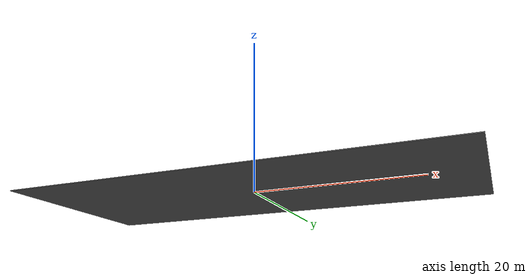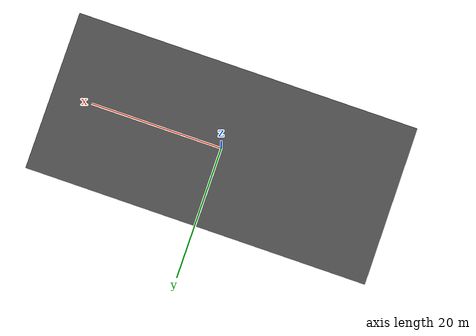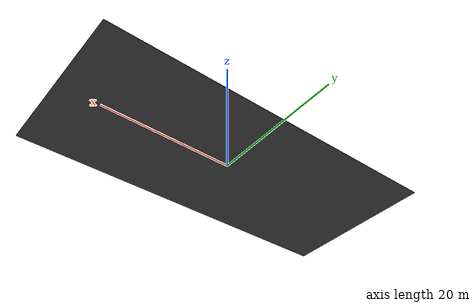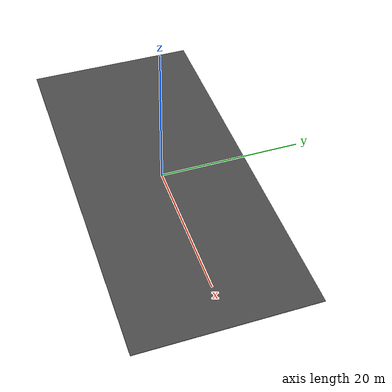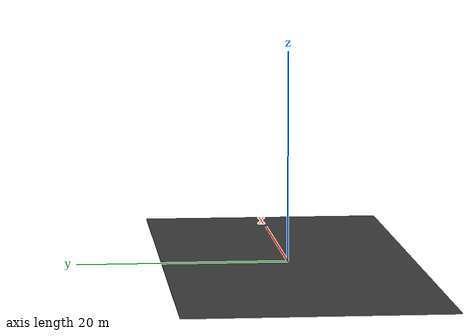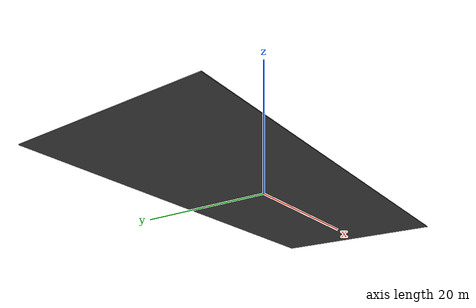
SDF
<?xml version='1.0'?>
<sdf version='1.6'>
  <model name='Grass'>
    <model name='asphalt_plane'>
      <link name='link'>
        <pose frame=''>0 0 0 0 -0 0</pose>
        <self_collide>0</self_collide>
        <kinematic>0</kinematic>
        <visual name='visual'>
          <cast_shadows>0</cast_shadows>
          <geometry>
            <box>
              <size>52.3811 24.0492 0.1</size>
            </box>
          </geometry>
          <material>
            <script>
              <uri>model://asphalt_plane/materials/scripts</uri>
              <uri>model://asphalt_plane/materials/textures</uri>
              <name>vrc/asphalt</name>
            </script>
            <ambient>0.5 0.5 0.5 1</ambient>
            <diffuse>0.5 0.5 0.5 1</diffuse>
            <specular>0.2 0.2 0.2 1</specular>
            <emissive>0 0 0 1</emissive>
          </material>
          <pose frame=''>0 0 0 0 -0 0</pose>
          <transparency>0</transparency>
        </visual>
        <collision name='collision'>
          <laser_retro>0</laser_retro>
          <max_contacts>10</max_contacts>
          <pose frame=''>0 0 0 0 -0 0</pose>
          <geometry>
            <box>
              <size>52.3811 24.0492 0.1</size>
            </box>
          </geometry>
          <surface>
            <friction>
              <ode>
                <mu>1</mu>
                <mu2>1</mu2>
                <fdir1>0 0 0</fdir1>
                <slip1>0</slip1>
                <slip2>0</slip2>
              </ode>
              <torsional>
                <coefficient>1</coefficient>
                <patch_radius>0</patch_radius>
                <surface_radius>0</surface_radius>
                <use_patch_radius>1</use_patch_radius>
                <ode>
                  <slip>0</slip>
                </ode>
              </torsional>
            </friction>
            <bounce>
              <restitution_coefficient>0</restitution_coefficient>
              <threshold>1e+06</threshold>
            </bounce>
            <contact>
              <collide_without_contact>0</collide_without_contact>
              <collide_without_contact_bitmask>1</collide_without_contact_bitmask>
              <collide_bitmask>1</collide_bitmask>
              <ode>
                <soft_cfm>0</soft_cfm>
                <soft_erp>0.2</soft_erp>
                <kp>1e+13</kp>
                <kd>1</kd>
                <max_vel>0.01</max_vel>
                <min_depth>0</min_depth>
              </ode>
              <bullet>
                <split_impulse>1</split_impulse>
                <split_impulse_penetration_threshold>-0.01</split_impulse_penetration_threshold>
                <soft_cfm>0</soft_cfm>
                <soft_erp>0.2</soft_erp>
                <kp>1e+13</kp>
                <kd>1</kd>
              </bullet>
            </contact>
          </surface>
        </collision>
      </link>
      <static>1</static>
      <allow_auto_disable>1</allow_auto_disable>
      <pose frame=''>0 0 0 0 -0 0</pose>
    </model>
    <static>1</static>
    <allow_auto_disable>1</allow_auto_disable>
  </model>
</sdf>
